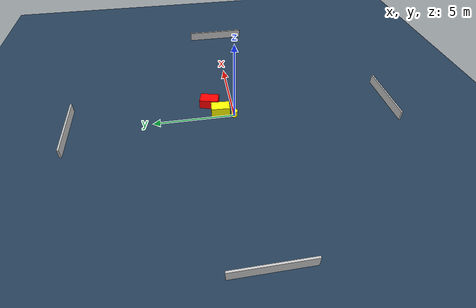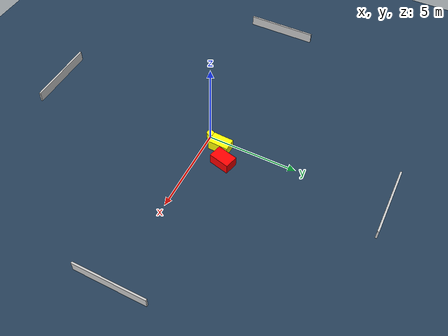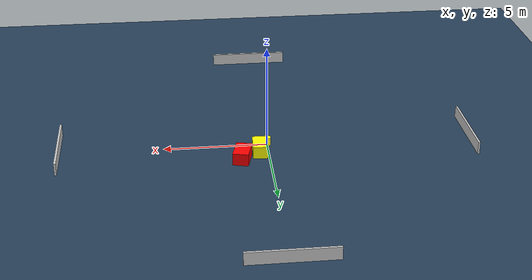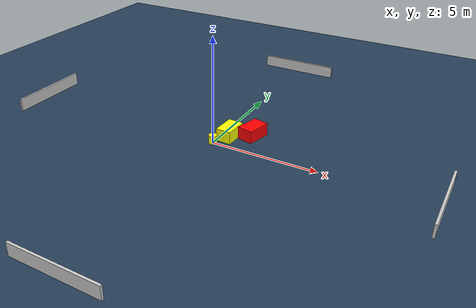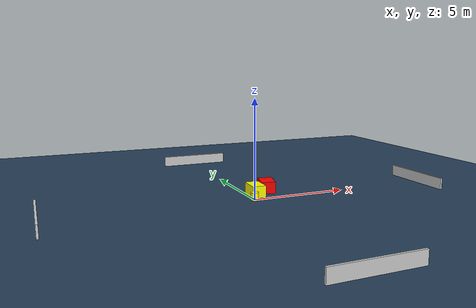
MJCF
<?xml version="1.0" ?>
<mujoco model="generated_environment">
  <option timestep="0.01" integrator="RK4" cone="elliptic"/>
  <default>
    <geom density="1"/>
  </default>
  <asset>
    <texture builtin="gradient" height="3072" name="skybox" rgb1="0.3 0.5 0.7" rgb2="0 0 0" type="skybox" width="512"/>
    <texture builtin="checker" height="300" name="groundplane" rgb1="0.2 0.3 0.4" rgb2="0.1 0.2 0.3" type="2d" width="300"/>
    <material name="groundplane" reflectance="0.2" texrepeat="5 5" texture="groundplane"/>
  </asset>
  <worldbody>
    <light dir="0 0 -1" directional="true" pos="0 0 1.5"/>
    <geom condim="3" friction="0.5 0.005 0.001" material="groundplane" name="floor" pos="0 0 0" size="0 0 0.05" type="plane"/>
    <body name="walls">
      <geom name="wall_1" condim="4" pos="-10.0 0.0 0.3" rgba="0.800000011920929 0.800000011920929 0.800000011920929 1.0" size="0.05 2.0 0.3" type="box"/>
      <geom name="wall_2" condim="4" pos="10.0 0.0 0.3" rgba="0.800000011920929 0.800000011920929 0.800000011920929 1.0" size="0.05 2.0 0.3" type="box"/>
      <geom name="wall_3" condim="4" pos="0.0 -10.0 0.3" rgba="0.800000011920929 0.800000011920929 0.800000011920929 1.0" size="2.0 0.05 0.3" type="box"/>
      <geom name="wall_4" condim="4" pos="0.0 10.0 0.3" rgba="0.800000011920929 0.800000011920929 0.800000011920929 1.0" size="2.0 0.05 0.3" type="box"/>
    </body>
    <body name="robot">
      <joint name="joint_x" type="slide" pos="0 0 0" axis="1 0 0"/>
      <joint name="joint_y" type="slide" pos="0 0 0" axis="0 1 0"/>
      <geom name="robot" type="cylinder" pos="0.0 0.0 0.2" size="0.2 0.2 0.0" mass="5.0" friction="1.0 0.005 0.0001" condim="4" rgba="1.0 1.0 0.0 1.0"/>
    </body>
    <body name="obstacle_1_movable">
      <geom name="obstacle_1_movable" condim="4" pos="0.40529045523300883 0.8221955496136499 0.3" euler="0 0 177.41908848202897" friction="0.0 0.005 0.001" rgba="1.0 1.0 0.0 1.0" size="0.3574566959657316 0.5709143699522897 0.3" type="box" mass="0.1"/>
      <joint type="free"/>
    </body>
    <body name="obstacle_2_static">
      <geom name="obstacle_2_static" condim="4" pos="1.2993031964726398 1.414121270060049 0.3" euler="0 0 255.8677303951115" friction="0.0 0.005 0.001" rgba="1.0 0.0 0.0 1.0" size="0.5810124790654568 0.3771802642922829 0.3" type="box"/>
    </body>
  </worldbody>
  <actuator>
    <motor name="actuator_x" joint="joint_x" gear="1" ctrlrange="-1 1"/>
    <motor name="actuator_y" joint="joint_y" gear="1" ctrlrange="-1 1"/>
  </actuator>
</mujoco>
